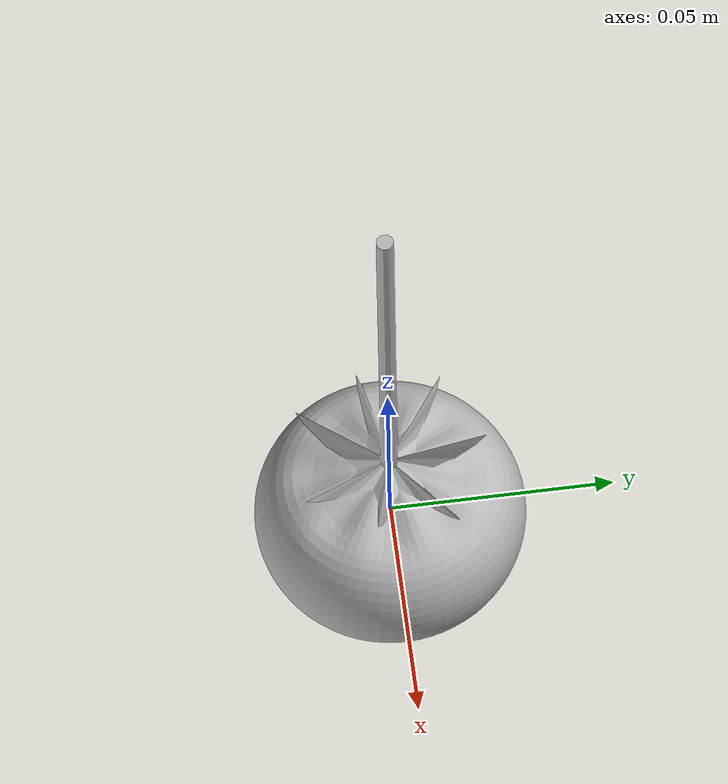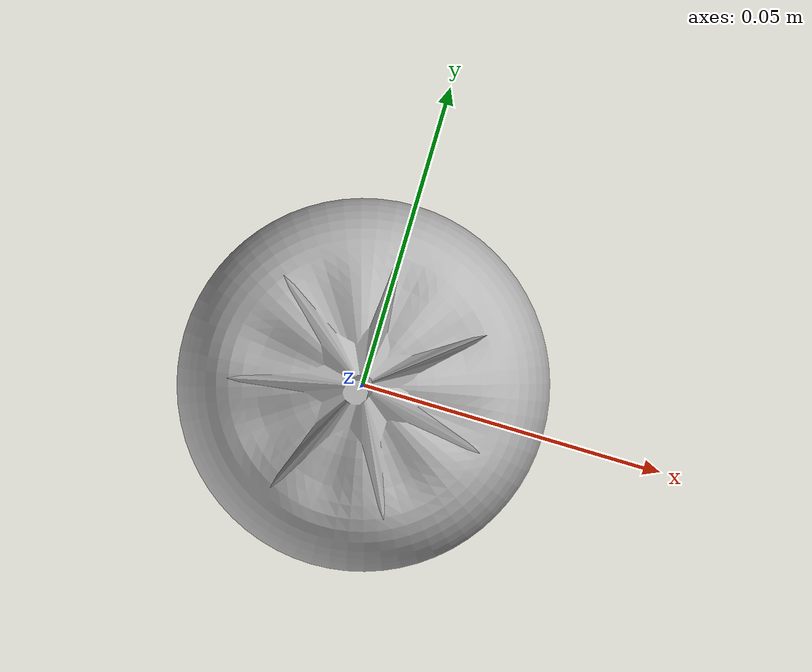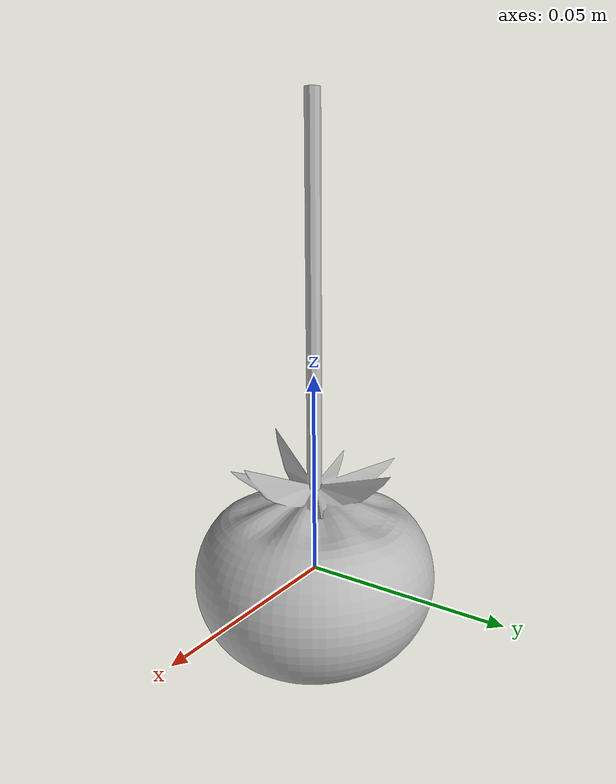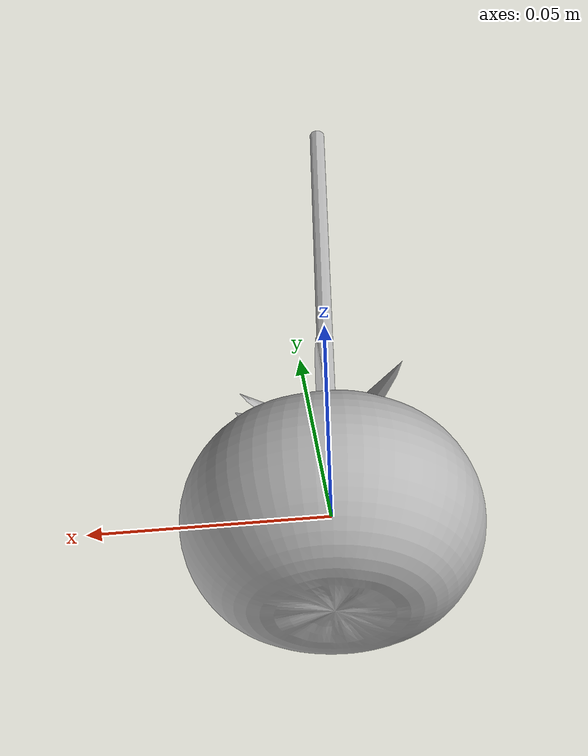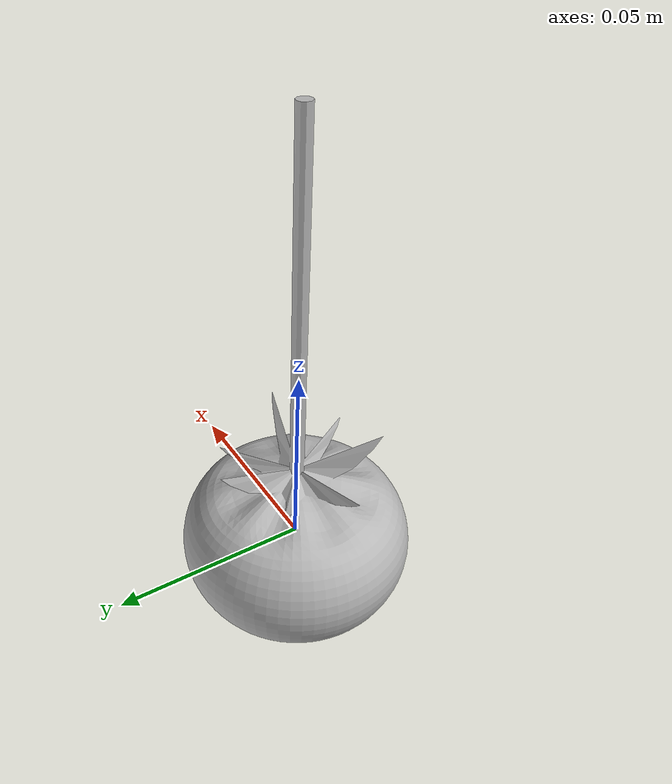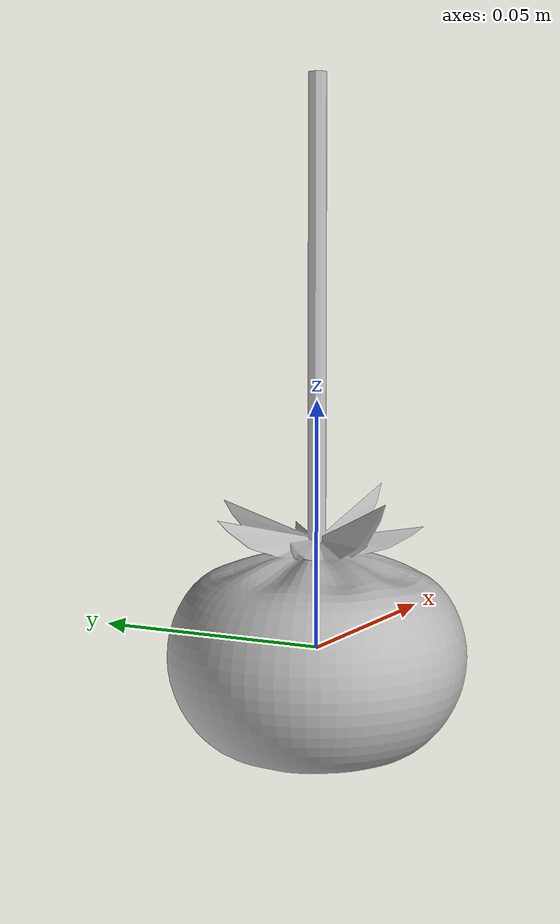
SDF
<?xml version="1.0"?>
<sdf version="1.6">
    <model name="red_tomato">
      <link name="tomato_link">

        <inertial>
          <inertia>
            <ixx>0.0001</ixx>
            <ixy>0</ixy>
            <ixz>0</ixz>
            <iyy>0.0001</iyy>
            <iyz>0</iyz>
            <izz>0.0001</izz>
          </inertia>
          <mass>0.1</mass>
        </inertial>

        <visual name="visual">
          <geometry>
            <mesh><uri>model://red_tomato/meshes/red_tomato.obj</uri></mesh>
          </geometry>
        </visual>
        <collision name="collision">
          <geometry>
            <sphere><radius>0.04</radius></sphere>
          </geometry>
        </collision>
      </link>
    </model>
</sdf>
